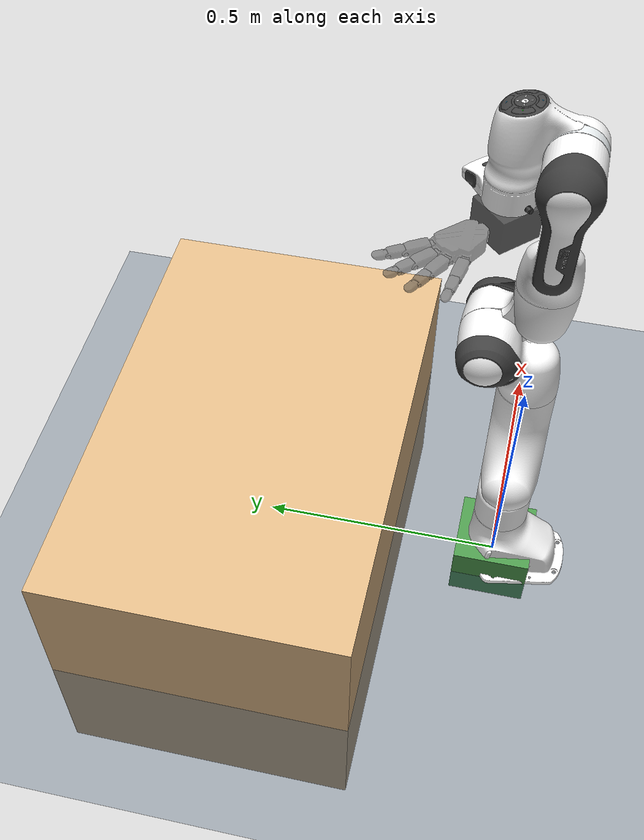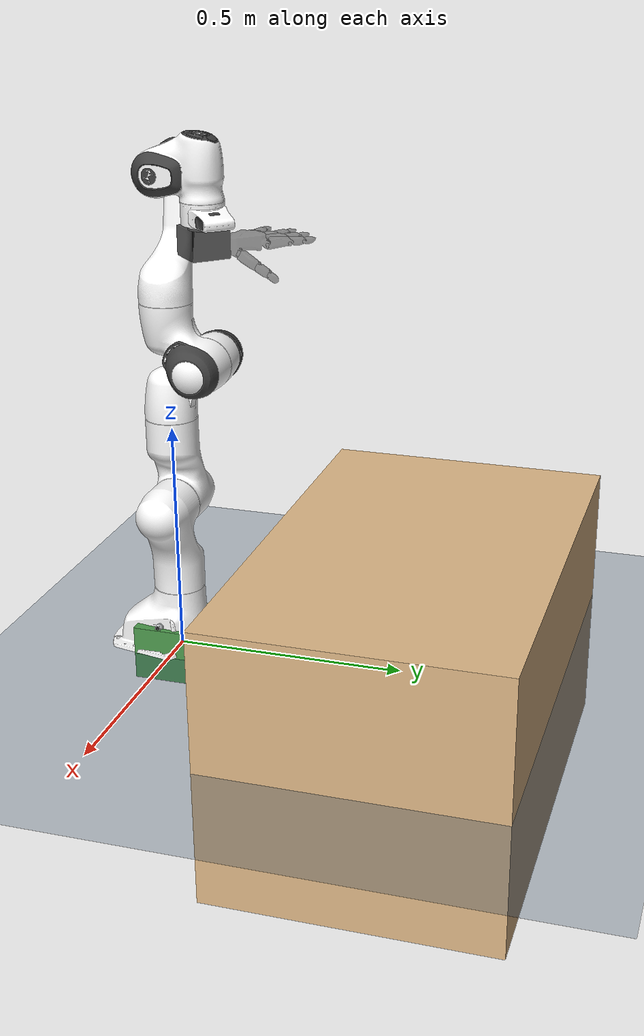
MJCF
<mujoco model="Arena">
  <include file="./panda_dphand.xml"/>

  <option timestep=".002"/>

  <statistic center="0.3 0 0.4" extent=".8"/>

  <visual>
    <headlight diffuse=".4 .4 .4" ambient=".5 .5 .5"/>
    <global azimuth="160" elevation="-20" offheight="128" offwidth="128"/>
    <quality offsamples="8"/>
  </visual>

  <asset>
    <texture type="skybox" builtin="gradient" rgb1=".3 .5 .7" rgb2="0 0 0" width="32" height="512"/>
    <texture name="grid" type="2d" builtin="checker" width="512" height="512" rgb1=".1 .2 .3" rgb2=".2 .3 .4"/>
    <material name="grid" texture="grid" texrepeat="2 2" texuniform="true" reflectance="0"/>
  </asset>

  <worldbody>
    <camera name="input" pos="0.167 1.181 0.830" xyaxes="-1.000 0.003 0.000 -0.002 -0.553 0.833"/>
    <camera name="front" pos="0.150 0.717 0.140" xyaxes="-1.000 0.007 -0.000 -0.000 -0.072 0.997"/>
    <light pos="0 0.5 4" dir="0 0 -1" diffuse=".6 .6 .6" specular=".6 .6 .6"/>
    <geom name="floor" pos="0 0 0" size="30 30 0.01" type="plane" material="grid"/>
    <geom name="desk" pos="0 .53 0" type="box" size=".5 .31 .3" rgba=".87 .72 .53 1" friction="1.0 1.0 1.0"/>

    <body name="object">
      <freejoint name="object"/>
      <geom name="object" type="box" size=".035 .035 .035" mass="0.2" rgba=".6 .3 .6 1" friction="1.0 0.3 0.5"/>
    </body>

    <body name="target">
      <freejoint name="target"/>
      <geom name="target" type="box" size=".08 .08 .06" mass="10.0" rgba=".3 .6 .3 1" friction="1.0 1.0 1.0"/>
      <geom name="visual_target" pos="0 0 0.06" type="sphere" size=".01" rgba="1 0 0 1" contype="0"/>
    </body>

    <!-- 目标位置可视化 - 必须在worldbody的直接子元素 -->
    <body name="world_frame" mocap="true" pos="0.7 0.5 0.2" euler="0 0 0">
      <site group="3" type="sphere" pos="0 0 0" size=".01" rgba=".6 .3 .6 .5"/>
      <site group="3" name="x_axis" type="cylinder" pos="0.1 0 0" euler="0 1.5707963267948966 0" size=".005 .1" rgba=".8 .3 .3 1"/>
      <site group="3" name="y_axis" type="cylinder" pos="0 0.1 0" euler="1.5707963267948966 0 0" size=".005 .1" rgba=".3 .8 .3 1"/>
      <site group="3" name="z_axis" type="cylinder" pos="0 0 0.1" euler="0 0 0" size=".005 .1" rgba=".3 .3 .8 1"/>
    </body>

    <body name="teleop" mocap="true" pos="0.0 0.5 0.4" euler="0 0 0">
      <site group="3" type="sphere" pos="0 0 0" size=".01" rgba=".6 .3 .6 .5"/>
      <site group="3" name="vr_z" type="cylinder" pos="0 0 0.05" euler="0 0 0" size=".005 .05" rgba=".3 .3 .8 .3"/>
      <site group="3" name="vr_x" type="cylinder" pos="0.05 0 0" euler="0 1.5707963267948966 0" size=".005 .05" rgba=".8 .3 .3 .3"/>
      <site group="3" name="vr_y" type="cylinder" pos="0 0.05 0" euler="1.5707963267948966 0 0" size=".005 .05" rgba=".3 .8 .3 .3"/>
      <site group="3" name="vr" type="box" size=".028 .028 .028" rgba=".6 .3 .3 0.3"/>
      <site group="3" name="teleop" type="box" size=".028 .028 .028" rgba=".6 .3 .3 0.3"/>
    </body>

    <body name="pinch" mocap="true" pos="0.5 0.0 0.6" euler="0 0 0">
      <site group="3" type="sphere" pos="0 0 0" size=".01" rgba=".6 .3 .6 .5"/>
      <site group="3" name="z-axis" type="cylinder" pos="0 0 0.05" euler="0 0 0" size=".005 .05" rgba=".3 .3 .8 1"/>
      <site group="3" name="x-axis" type="cylinder" pos="0.05 0 0" euler="0 1.5707963267948966 0" size=".005 .05" rgba=".8 .3 .3 1"/>
      <site group="3" name="y-axis" type="cylinder" pos="0 0.05 0" euler="1.5707963267948966 0 0" size=".005 .05" rgba=".3 .8 .3 1"/>
    </body>

  </worldbody>

  <sensor>
    <framepos name="object_pos" objtype="geom" objname="object"/>
    <framequat name="object_quat" objtype="geom" objname="object"/>
    <framepos name="target_pos" objtype="geom" objname="visual_target"/>
    <framequat name="target_quat" objtype="geom" objname="visual_target"/>
  </sensor>

  <keyframe>
    <key name="init_state"
    qpos="  0 -0.785398163 0 -2.35619449 0 1.57079633 0.785398163
            0 0 0 0 0 0 0
            0 0 0 0 0 0 0
            0 0 0 0 0 0 0
            0
            -.15 .4 0.312 1 0 0 0
             .15 .4 0.36 1 0 0 0"

    ctrl="  0 0 0 0 0 0 0
            0 0 0 0 0 0 0
            0 0 0 0 0 0 0
            0 0 0 0 0 0 0 0"
    />
  </keyframe>
</mujoco>

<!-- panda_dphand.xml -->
<mujoco model="panda">

  <compiler angle="radian" autolimits="true"/>
  <option cone="elliptic" gravity="0 0 -9.81" impratio="10" timestep="0.002"/>

  <default>
    <default class="panda">
      <joint armature="0.1" damping="1" axis="0 0 1" range="-2.8973 2.8973"/>
      <default class="panda/visual">
        <geom type="mesh" contype="0" conaffinity="0" group="2"/>
      </default>
      <default class="panda/collision">
        <geom type="mesh" group="3"/>
      </default>
      <site size="0.001" rgba="0.5 0.5 0.5 0.3" group="4"/>
    </default>

    <!-- 灵巧手 -->
    <default class="plastic">
        <geom solimp="0.5 0.99 0.0001" solref="0.005 1" type="mesh" material="black"/>
    </default>
    <default class="jointconfig">
        <joint axis="1 0 0" damping="0.02" armature="0.0002" frictionloss="0.05"/>
    </default>

    <default class="DIPCtrl">
      <joint  range="0 1.22173"/>
      <position kp="1.0" dampratio="0.9" ctrlrange="0 1.22173" forcerange="-0.66818 0.66818"/>
    </default>

    <default class="PIPCtrl">
      <joint  range="0 1.919862"/>
      <position kp="1.0" dampratio="0.9" ctrlrange="0 1.919862" forcerange="-2.063 2.063"/>
    </default>

    <default class="MCPCtrl">
      <joint  range="-0.523599 1.570796"/>
      <position kp="1.2" dampratio="0.9" ctrlrange="-0.523599 1.570796" forcerange="-4.83 4.83"/>
    </default>

    <default class="MCP2Ctrl">
      <joint  range="-0.610865 0.610865"/>
      <position kp="1.0" dampratio="0.9" ctrlrange="-0.610865 0.610865" forcerange="-2.45 2.45"/>
    </default>

  </default>

  <asset>
    <material name="white" rgba="1 1 1 1"/>
    <material name="off_white" rgba="0.901961 0.921569 0.929412 1"/>
    <material name="dark_grey" rgba="0.25 0.25 0.25 1"/>
    <material name="green" rgba="0 1 0 1"/>
    <material name="light_blue" rgba="0.039216 0.541176 0.780392 1"/>
    <material name="metal" rgba="0.58 0.58 0.58 1"/>
    <material name="silicone" rgba="0.1882 0.1882 0.1882 1"/>

    <mesh name="link0_c" file="franka_emika_panda/assets/link0.stl"/>
    <mesh name="link1_c" file="franka_emika_panda/assets/link1.stl"/>
    <mesh name="link2_c" file="franka_emika_panda/assets/link2.stl"/>
    <mesh name="link3_c" file="franka_emika_panda/assets/link3.stl"/>
    <mesh name="link4_c" file="franka_emika_panda/assets/link4.stl"/>
    <mesh name="link5_c0" file="franka_emika_panda/assets/link5_collision_0.obj"/>
    <mesh name="link5_c1" file="franka_emika_panda/assets/link5_collision_1.obj"/>
    <mesh name="link5_c2" file="franka_emika_panda/assets/link5_collision_2.obj"/>
    <mesh name="link6_c" file="franka_emika_panda/assets/link6.stl"/>
    <mesh name="link7_c" file="franka_emika_panda/assets/link7.stl"/>
    <mesh file="franka_emika_panda/assets/link0_0.obj"/>
    <mesh file="franka_emika_panda/assets/link0_1.obj"/>
    <mesh file="franka_emika_panda/assets/link0_2.obj"/>
    <mesh file="franka_emika_panda/assets/link0_3.obj"/>
    <mesh file="franka_emika_panda/assets/link0_4.obj"/>
    <mesh file="franka_emika_panda/assets/link0_5.obj"/>
    <mesh file="franka_emika_panda/assets/link0_7.obj"/>
    <mesh file="franka_emika_panda/assets/link0_8.obj"/>
    <mesh file="franka_emika_panda/assets/link0_9.obj"/>
    <mesh file="franka_emika_panda/assets/link0_10.obj"/>
    <mesh file="franka_emika_panda/assets/link0_11.obj"/>
    <mesh file="franka_emika_panda/assets/link1.obj"/>
    <mesh file="franka_emika_panda/assets/link2.obj"/>
    <mesh file="franka_emika_panda/assets/link3_0.obj"/>
    <mesh file="franka_emika_panda/assets/link3_1.obj"/>
    <mesh file="franka_emika_panda/assets/link3_2.obj"/>
    <mesh file="franka_emika_panda/assets/link3_3.obj"/>
    <mesh file="franka_emika_panda/assets/link4_0.obj"/>
    <mesh file="franka_emika_panda/assets/link4_1.obj"/>
    <mesh file="franka_emika_panda/assets/link4_2.obj"/>
    <mesh file="franka_emika_panda/assets/link4_3.obj"/>
    <mesh file="franka_emika_panda/assets/link5_0.obj"/>
    <mesh file="franka_emika_panda/assets/link5_1.obj"/>
    <mesh file="franka_emika_panda/assets/link5_2.obj"/>
    <mesh file="franka_emika_panda/assets/link6_0.obj"/>
    <mesh file="franka_emika_panda/assets/link6_1.obj"/>
    <mesh file="franka_emika_panda/assets/link6_2.obj"/>
    <mesh file="franka_emika_panda/assets/link6_3.obj"/>
    <mesh file="franka_emika_panda/assets/link6_4.obj"/>
    <mesh file="franka_emika_panda/assets/link6_5.obj"/>
    <mesh file="franka_emika_panda/assets/link6_6.obj"/>
    <mesh file="franka_emika_panda/assets/link6_7.obj"/>
    <mesh file="franka_emika_panda/assets/link6_8.obj"/>
    <mesh file="franka_emika_panda/assets/link6_9.obj"/>
    <mesh file="franka_emika_panda/assets/link6_10.obj"/>
    <mesh file="franka_emika_panda/assets/link6_11.obj"/>
    <mesh file="franka_emika_panda/assets/link6_12.obj"/>
    <mesh file="franka_emika_panda/assets/link6_13.obj"/>
    <mesh file="franka_emika_panda/assets/link6_14.obj"/>
    <mesh file="franka_emika_panda/assets/link6_15.obj"/>
    <mesh file="franka_emika_panda/assets/link6_16.obj"/>
    <mesh file="franka_emika_panda/assets/link7_0.obj"/>
    <mesh file="franka_emika_panda/assets/link7_1.obj"/>
    <mesh file="franka_emika_panda/assets/link7_2.obj"/>
    <mesh file="franka_emika_panda/assets/link7_3.obj"/>
    <mesh file="franka_emika_panda/assets/link7_4.obj"/>
    <mesh file="franka_emika_panda/assets/link7_5.obj"/>
    <mesh file="franka_emika_panda/assets/link7_6.obj"/>
    <mesh file="franka_emika_panda/assets/link7_7.obj"/>
    <!-- 灵巧手 -->
    <material name="transparent_black" specular="0.5" shininess="0.25" rgba="0.2 0.2 0.2 0.5"  />
    <material name="black" specular="0.5" shininess="0.25" rgba="0.2 0.2 0.2 0.5"  />
    <material name="gray" specular="0.0" shininess="0.5" rgba="0.80848 0.80848 0.80848 1"/>

    <mesh name="Wrist" file="dphand/meshes_obj/Wrist.obj" scale="0.001 0.001 0.001" />
    <mesh name="Palm" file="dphand/meshes_obj/Palm.obj" scale="0.001 0.001 0.001" />
    <mesh name="Thumb-MCP" file="dphand/meshes_obj/MCP.obj" scale="0.001 0.001 0.001" />
    <mesh name="Thumb-PP" file="dphand/meshes_obj/PP.obj" scale="0.001 0.001 0.001" />
    <mesh name="Thumb-PM" file="dphand/meshes_obj/PM.obj" scale="0.001 0.001 0.001" />
    <mesh name="Thumb-PD" file="dphand/meshes_obj/PD.obj" scale="0.001 0.001 0.001" />
    <mesh name="Index-PP" file="dphand/meshes_obj/PP.obj" scale="0.001 0.001 0.001" />
    <mesh name="Index-PM" file="dphand/meshes_obj/PM.obj" scale="0.001 0.001 0.001" />
    <mesh name="Index-PD" file="dphand/meshes_obj/PD.obj" scale="0.001 0.001 0.001" />
    <mesh name="Middle-PD" file="dphand/meshes_obj/PD.obj" scale="0.001 0.001 0.001" />
    <mesh name="Middle-PM" file="dphand/meshes_obj/PM.obj" scale="0.001 0.001 0.001" />
    <mesh name="Middle-PP" file="dphand/meshes_obj/PP.obj" scale="0.001 0.001 0.001" />
    <mesh name="Middle-MCP" file="dphand/meshes_obj/MCP.obj" scale="0.001 0.001 0.001" />
    <mesh name="Ring-MCP" file="dphand/meshes_obj/MCP.obj" scale="0.001 0.001 0.001" />
    <mesh name="Ring-PP" file="dphand/meshes_obj/PP.obj" scale="0.001 0.001 0.001" />
    <mesh name="Ring-PM" file="dphand/meshes_obj/PM.obj" scale="0.001 0.001 0.001" />
    <mesh name="Ring-PD" file="dphand/meshes_obj/PD.obj" scale="0.001 0.001 0.001" />
    <mesh name="Little-PD" file="dphand/meshes_obj/PD.obj" scale="0.001 0.001 0.001" />
    <mesh name="Little-PM" file="dphand/meshes_obj/PM.obj" scale="0.001 0.001 0.001" />
    <mesh name="Little-PP" file="dphand/meshes_obj/PP.obj" scale="0.001 0.001 0.001" />
    <mesh name="Little-MCP" file="dphand/meshes_obj/MCP.obj" scale="0.001 0.001 0.001" />
    <mesh name="Index-MCP" file="dphand/meshes_obj/MCP.obj" scale="0.001 0.001 0.001" />
    <mesh name="Forearm" file="dphand/meshes_obj/Forearm.obj" scale="0.001 0.001 0.001" />

  </asset>

  <worldbody>

    <body name="link0" euler="0 0 1.5708" childclass="panda">

      <inertial mass="0.629769" pos="0 0 0"
        fullinertia="0.00315 0.00388 0.004285 8.2904e-7 0.00015 8.2299e-6"/>
      <geom mesh="link0_0" material="off_white" class="panda/visual"/>
      <geom mesh="link0_1" material="dark_grey" class="panda/visual"/>
      <geom mesh="link0_2" material="off_white" class="panda/visual"/>
      <geom mesh="link0_3" material="dark_grey" class="panda/visual"/>
      <geom mesh="link0_4" material="off_white" class="panda/visual"/>
      <geom mesh="link0_5" material="dark_grey" class="panda/visual"/>
      <geom mesh="link0_7" material="white" class="panda/visual"/>
      <geom mesh="link0_8" material="white" class="panda/visual"/>
      <geom mesh="link0_9" material="dark_grey" class="panda/visual"/>
      <geom mesh="link0_10" material="off_white" class="panda/visual"/>
      <geom mesh="link0_11" material="white" class="panda/visual"/>
      <geom mesh="link0_c" class="panda/collision"/>

      <body name="link1" pos="0 0 0.333">
        <inertial mass="4.970684" pos="0.003875 0.002081 -0.04762"
          fullinertia="0.70337 0.70661 0.0091170 -0.00013900 0.0067720 0.019169"/>
        <joint name="joint1"/>
        <site name="joint1"/>
        <geom material="white" mesh="link1" class="panda/visual"/>
        <geom mesh="link1_c" class="panda/collision"/>

        <body name="link2" quat="1 -1 0 0">
          <inertial mass="0.646926" pos="-0.003141 -0.02872 0.003495"
            fullinertia="0.0079620 2.8110e-2 2.5995e-2 -3.925e-3 1.0254e-2 7.04e-4"/>
          <joint name="joint2" range="-1.7628 1.7628"/>
          <site name="joint2"/>
          <geom material="white" mesh="link2" class="panda/visual"/>
          <geom mesh="link2_c" class="panda/collision"/>

          <body name="link3" pos="0 -0.316 0" quat="1 1 0 0">
            <inertial mass="3.228604" pos="2.7518e-2 3.9252e-2 -6.6502e-2"
              fullinertia="3.7242e-2 3.6155e-2 1.083e-2 -4.761e-3 -1.1396e-2 -1.2805e-2"/>
            <joint name="joint3"/>
            <site name="joint3"/>
            <geom mesh="link3_0" material="white" class="panda/visual"/>
            <geom mesh="link3_1" material="white" class="panda/visual"/>
            <geom mesh="link3_2" material="white" class="panda/visual"/>
            <geom mesh="link3_3" material="dark_grey" class="panda/visual"/>
            <geom mesh="link3_c" class="panda/collision"/>

            <body name="link4" pos="0.0825 0 0" quat="1 1 0 0">
              <inertial mass="3.587895" pos="-5.317e-2 1.04419e-1 2.7454e-2"
                fullinertia="2.5853e-2 1.9552e-2 2.8323e-2 7.796e-3 -1.332e-3 8.641e-3"/>
              <joint name="joint4" range="-3.0718 -0.0698"/>
              <site name="joint4"/>
              <geom mesh="link4_0" material="white" class="panda/visual"/>
              <geom mesh="link4_1" material="white" class="panda/visual"/>
              <geom mesh="link4_2" material="dark_grey" class="panda/visual"/>
              <geom mesh="link4_3" material="white" class="panda/visual"/>
              <geom mesh="link4_c" class="panda/collision"/>

              <body name="link5" pos="-0.0825 0.384 0" quat="1 -1 0 0">
                <inertial mass="1.225946" pos="-1.1953e-2 4.1065e-2 -3.8437e-2"
                  fullinertia="3.5549e-2 2.9474e-2 8.627e-3 -2.117e-3 -4.037e-3 2.29e-4"/>
                <joint name="joint5"/>
                <site name="joint5"/>
                <geom mesh="link5_0" material="dark_grey" class="panda/visual"/>
                <geom mesh="link5_1" material="white" class="panda/visual"/>
                <geom mesh="link5_2" material="white" class="panda/visual"/>
                <geom mesh="link5_c0" class="panda/collision"/>
                <geom mesh="link5_c1" class="panda/collision"/>
                <geom mesh="link5_c2" class="panda/collision"/>

                <body name="link6" quat="1 1 0 0">
                  <inertial mass="1.666555" pos="6.0149e-2 -1.4117e-2 -1.0517e-2"
                    fullinertia="1.964e-3 4.354e-3 5.433e-3 1.09e-4 -1.158e-3 3.41e-4"/>
                  <joint name="joint6" range="-0.0175 3.7525"/>
                  <site name="joint6"/>
                  <geom mesh="link6_0" material="off_white" class="panda/visual"/>
                  <geom mesh="link6_1" material="white" class="panda/visual"/>
                  <geom mesh="link6_2" material="dark_grey" class="panda/visual"/>
                  <geom mesh="link6_3" material="white" class="panda/visual"/>
                  <geom mesh="link6_4" material="white" class="panda/visual"/>
                  <geom mesh="link6_5" material="white" class="panda/visual"/>
                  <geom mesh="link6_6" material="white" class="panda/visual"/>
                  <geom mesh="link6_7" material="light_blue" class="panda/visual"/>
                  <geom mesh="link6_8" material="light_blue" class="panda/visual"/>
                  <geom mesh="link6_9" material="dark_grey" class="panda/visual"/>
                  <geom mesh="link6_10" material="dark_grey" class="panda/visual"/>
                  <geom mesh="link6_11" material="white" class="panda/visual"/>
                  <geom mesh="link6_12" material="green" class="panda/visual"/>
                  <geom mesh="link6_13" material="white" class="panda/visual"/>
                  <geom mesh="link6_14" material="dark_grey" class="panda/visual"/>
                  <geom mesh="link6_15" material="dark_grey" class="panda/visual"/>
                  <geom mesh="link6_16" material="white" class="panda/visual"/>
                  <geom mesh="link6_c" class="panda/collision"/>

                  <body name="link7" pos="0.088 0 0" quat="1 1 0 0">
                    <inertial mass="7.35522e-01" pos="1.0517e-2 -4.252e-3 6.1597e-2"
                      fullinertia="1.2516e-2 1.0027e-2 4.815e-3 -4.28e-4 -1.196e-3 -7.41e-4"/>
                    <joint name="joint7"/>
                    <site name="joint7"/>
                    <geom mesh="link7_0" material="white" class="panda/visual"/>
                    <geom mesh="link7_1" material="dark_grey" class="panda/visual"/>
                    <geom mesh="link7_2" material="dark_grey" class="panda/visual"/>
                    <geom mesh="link7_3" material="dark_grey" class="panda/visual"/>
                    <geom mesh="link7_4" material="dark_grey" class="panda/visual"/>
                    <geom mesh="link7_5" material="dark_grey" class="panda/visual"/>
                    <geom mesh="link7_6" material="dark_grey" class="panda/visual"/>
                    <geom mesh="link7_7" material="white" class="panda/visual"/>
                    <geom mesh="link7_c" class="panda/collision"/>

                      <!-- 灵巧手 -->

                      <body name="attachment" pos="0 0 0" quat="0.3826834 0 0 0.9238795">
                        <site name="pinch" pos="0 0 0.147" euler="0 3.14159 -1.5708"/>

                        <geom type="box" size="0.01 0.01 0.01" rgba="1.0 0.0 0.0 0.5"/>

                        <body name="Forearm" euler="3.14159 0 1.5708" pos="0.107 0 0.147">
                            <geom class="plastic" name="Forearm_geom" type="mesh" mesh="Forearm" pos="0 0 0" euler="0 0 0" material="transparent_black" group="4"/>
                            <inertial mass="1.9453304463125118" pos="-2.6615378024531148e-08 0.009019289013986305 0.0032088635623812897" fullinertia="0.009066690743886285 0.002094541290341062 0.00960327727265748 -6.786222020669816e-09 -1.1843581789473546e-09 8.685478979449512e-05" />

                            <body name="Wrist" pos="-5.329070518200751e-17 0.13654999999999984 -1.7763568394002505e-17" euler="-3.141592653589793 7.41212194690677e-32 -3.141592653589793">
                                <joint  class="jointconfig" name="Forearm_Wrist-Flexion" type="hinge" axis="0.9999999999999922 -8.887205207863613e-16 -4.3835946866997966e-16" pos="0.020000023862298447 1.7202427902594974e-07 1.7511521353289145e-07" range="-1.047198 1.047198" damping="2.0 "/>
                                <geom type="box" pos="0 -0.03 -0.015" size="0.04 0.04 0.03" rgba="0.2 0.2 0.2 0.8"/>
                                <geom class="plastic" name="Wrist_geom" type="mesh" mesh="Wrist" pos="0 0 0" euler="0 0 0"/>
                                <inertial mass="0.02656214079320285" pos="-1.69243593868272e-07 0.0016472458767444085 -1.6800554081391377e-06" fullinertia="2.0813142204422996e-06 4.359133919833236e-06 3.936873235039729e-06 -4.4040114384845307e-11 -1.131996854421492e-08 -5.300701354629199e-10" />

                                <body name="Palm" pos="0.01129099357241001 0.07971340504264361 0.043586459565069006" euler="3.141592653589793 -5.645033986231014e-06 -3.141592653589793">
                                    <joint  class="jointconfig" name="Wrist_Wrist-Abduction" type="hinge" axis="5.645033985756887e-06 3.1918911957973315e-16 -0.9999999999840592" pos="0.011290782654479357 -0.06471323301836342 0.033136348187234654" range="-0.872665 0.523599" damping="0.1"/>
                                    <geom class="plastic" name="Palm_geom" type="mesh" mesh="Palm" pos="0 0 0" euler="0 0 0"/>
                                    <inertial mass="0.2602111705177352" pos="0.008366751647868122 -0.02196163963553714 0.050750200275004716" fullinertia="0.00016809656398654498 9.383212552094538e-05 0.0002082113956576322 3.3379116774949452e-06 -8.329607410925668e-07 -6.439751497203951e-06" />

                                    <body name="Thumb-MCP" pos="0.06646453612762752 -0.006132543067662581 0.23216861852976048" euler="0.8433678826770468 -0.7227359898922351 1.0799202183467054">
                                        <joint  class="jointconfig" name="Palm_Thumb-MCP-Flexion" type="hinge" axis="0.9999993741212565 -1.9773373993725585e-08 2.7577507161202774e-07" pos="-0.19100048404368228 0.008500111311707255 -0.05328147048432252" range="-0.523599 1.570796"/>
                                        <geom class="plastic" name="Thumb-MCP_geom" type="mesh" mesh="Thumb-MCP" pos="0 0 0" euler="0 0 0"/>
                                        <inertial mass="0.005036994326199342" pos="-0.20000003939517735 0.00771726400998568 -0.05238245453895492" fullinertia="1.2970868632662727e-07 1.6007173878014266e-07 1.5900576781080497e-07 1.9696295556984942e-13 -5.666079262914197e-13 -1.4577138745808807e-08" />

                                        <body name="Thumb-PP" pos="-0.1999099137026213 -8.975787161681125e-05 -0.09186663199430434" euler="1.5707964398014924 -4.440892098500623e-16 -3.1415926535897927">
                                            <joint  class="jointconfig" name="Thumb-MCP_Thumb-MCP-Abduction" type="hinge" axis="1.2682376226980097e-07 -0.4999997811126733 0.8660249336764163" pos="9.00146861002862e-05 -0.03683519983393464 -0.011620692906578887" range="-0.610865 0.610865"/>
                                            <geom class="plastic" name="Thumb-PP_geom" type="mesh" mesh="Thumb-PP" pos="0 0 0" euler="0 0 0"/>
                                            <inertial mass="0.03708856624254697" pos="9.030301616385424e-05 -0.014531198977560479 -0.005880351460123734" fullinertia="5.753639912619248e-06 2.3941975919820493e-06 5.462290746232934e-06 -1.8478345177537705e-10 -9.173268363720042e-11 -6.425808363890366e-07" />

                                            <body name="Thumb-PM" pos="9.00862973793437e-05 0.0006333688633876378 -8.975695249269222e-05" euler="1.570796326794897 -3.885780586188048e-16 -3.1415926535897922">
                                                <joint  class="jointconfig" name="Thumb-PP_Thumb-PIP-Flexion" type="hinge" axis="0.9999993741212565 -1.9773343240547803e-08 2.757750738047182e-07" pos="0.009000053397670283 0.007500012297346963 -0.007499959122900093" range="0 1.919862" />
                                                <geom class="plastic" name="Thumb-PM_geom" type="mesh" mesh="Thumb-PM" pos="0 0 0" euler="0 0 0" />
                                                <inertial mass="0.020227223379927373" pos="-1.848580694421842e-07 0.005195827579475683 -0.0187189494907972" fullinertia="1.9967071755990337e-06 2.0011051517931557e-06 8.144475144013871e-07 -8.221468741961615e-12 3.2138099137484784e-12 -1.7160624501976697e-07" />

                                                <body name="Thumb-PD" pos="2.0428103653102883e-15 0.006000000000000014 -0.030374007257449022" euler="-0.0 -5.30131494258512e-15 1.6653345369377338e-16">
                                                    <joint  class="jointconfig" name="Thumb-PM_Thumb-DIP-Flexion" type="hinge" axis="0.9999993741212571 -1.9773343351570105e-08 2.7577506855891443e-07" pos="0.007500185506918168 -1.0135717486668694e-08 -0.005999648442277302" range="0 1.22173" />
                                                    <geom class="plastic" name="Thumb-PD_geom" type="mesh" mesh="Thumb-PD" pos="0 0 0" euler="0 0 0" />
                                                    <inertial mass="0.008221233655296712" pos="4.78256383562841e-06 -0.001059520123761583 -0.014235123790328312" fullinertia="5.898243383359009e-07 6.159934754370924e-07 2.2995080143593457e-07 -4.951643830232875e-11 -3.519078467407562e-10 -5.015937733979458e-08" />

                                                </body>
                                            </body>
                                        </body>
                                    </body>

                                    <body name="Index-MCP" pos="-0.17611858726643287 0.01860627582114212 0.0520866274849916" euler="1.5707752592412532 -0.2617993878586258 -3.141592653589793">
                                        <joint  class="jointconfig" name="Palm_Index-MCP-Flexion" type="hinge" axis="1.0000001561184753 1.9302374834874957e-12 8.852540064885339e-08" pos="-0.1910001700693438 0.00850017511903284 -0.05328168114121647" range="-0.523599 1.570796" />
                                        <geom class="plastic" name="Index-MCP_geom" type="mesh" mesh="Index-MCP" pos="0 0 0" euler="0 0 0" />
                                        <inertial mass="0.005036994326199342" pos="-0.20000003939517752 0.007717264009985939 -0.052382454538954695" fullinertia="1.297086863268387e-07 1.6007173878164116e-07 1.5900576781229262e-07 1.9696271334408768e-13 -5.666087175359978e-13 -1.4577138745714998e-08" />

                                        <body name="Index-PP" pos="-0.19990991370262104 -8.975787161696003e-05 -0.09186663199430434" euler="1.5707964398014924 -6.468858380816871e-16 -3.141592653589793">
                                            <joint  class="jointconfig" name="Index-MCP_Index-MCP-Abduction" type="hinge" axis="-2.6781389336760775e-07 -0.5000005133392491 0.8660250383253366" pos="8.999934378633653e-05 -0.03683495104841343 -0.011620898985207259" range="-0.610865 0.610865"  />
                                            <geom class="plastic" name="Index-PP_geom" type="mesh" mesh="Index-PP" pos="0 0 0" euler="0 0 0"/>
                                            <inertial mass="0.03708856624254697" pos="9.030301616390303e-05 -0.014531198977560611 -0.005880351460123762" fullinertia="5.753639912618303e-06 2.3941975919821154e-06 5.4622907462326845e-06 -1.8478345217030616e-10 -9.17326836966934e-11 -6.425808363889253e-07" />

                                            <body name="Index-PM" pos="9.008629737936147e-05 0.0006333688633875312 -8.97569524926678e-05" euler="1.5707963267948966 1.1102230246251568e-16 -3.1415926535897927">
                                                <joint  class="jointconfig" name="Index-PP_Index-PIP-Flexion" type="hinge" axis="1.0000001561184766 1.9402182929335594e-12 8.852540045456436e-08" pos="0.009000288994289127 0.007500156170805646 -0.007499409252653209" range="0 1.919862"  />
                                                <geom class="plastic" name="Index-PM_geom" type="mesh" mesh="Index-PM" pos="0 0 0" euler="0 0 0" />
                                                <inertial mass="0.020227223379927373" pos="-1.848580693832036e-07 0.005195827579475731 -0.01871894949079733" fullinertia="1.9967071755979597e-06 2.0011051517931565e-06 8.144475144015177e-07 -8.221468830239125e-12 3.2138093862587105e-12 -1.716062450195863e-07" />

                                                <body name="Index-PD" pos="1.838529328779259e-15 0.005999999999999879 -0.030374007257448526" euler="4.1619810896287264e-17 -5.8009153036664374e-15 5.659365933784879e-17">
                                                    <joint  class="jointconfig" name="Index-PM_Index-DIP-Flexion" type="hinge" axis="1.000000156118477 1.9401617001212545e-12 8.852539465364906e-08" pos="0.007500340150546129 -4.768566481272736e-07 -0.005999444697657891" range="0 1.22173"  />
                                                    <geom class="plastic" name="Index-PD_geom" type="mesh" mesh="Index-PD" pos="0 0 0" euler="0 0 0" />
                                                    <inertial mass="0.008221233655296712" pos="4.782563835702136e-06 -0.0010595201237615741 -0.014235123790328466" fullinertia="5.898243383354302e-07 6.159934754366981e-07 2.2995080143603772e-07 -4.951643833947085e-11 -3.519078468321299e-10 -5.0159377339789395e-08" />
                                                </body>
                                            </body>
                                        </body>
                                    </body>

                                    <body name="Middle-MCP" pos="-0.18870930045441625 -0.029730502816816086 0.052085394207460056" euler="1.5707963284469457 -1.915701280528547e-18 -3.141587008555807">
                                        <joint  class="jointconfig" name="Palm_Middle-MCP-Flexion" type="hinge" axis="0.9999999999999927 -5.144259135054388e-16 1.0216509586550925e-14" pos="-0.190999976137697 0.00850017511521407 -0.053282269784410745" range="-0.523599 1.570796" />
                                        <geom class="plastic" name="Middle-MCP_geom" type="mesh" mesh="Middle-MCP" pos="0 0 0" euler="0 0 0"/>
                                        <inertial mass="0.005036994326199342" pos="-0.20000003939517802 0.00771726400998593 -0.052382454538954855" fullinertia="1.2970868632693096e-07 1.6007173878119713e-07 1.590057678117707e-07 1.9696273647388832e-13 -5.66608568171624e-13 -1.4577138745737425e-08" />

                                        <body name="Middle-PP" pos="-0.1999099137026208 -8.97578716168801e-05 -0.09186663199430463" euler="1.5707964398014933 -1.6303776237407785e-15 3.141592653589792">
                                            <joint  class="jointconfig" name="Middle-MCP_Middle-MCP-Abduction" type="hinge" axis="2.108308406328883e-15 -0.5000000964358128 0.8660249443227128" pos="9.006243507892484e-05 -0.03683436090165744 -0.011620937152247808"  range="-0.610865 0.610865"   />
                                            <geom class="plastic" name="Middle-PP_geom" type="mesh" mesh="Middle-PP" pos="0 0 0" euler="0 0 0" />
                                            <inertial mass="0.03708856624254697" pos="9.030301616385639e-05 -0.014531198977560526 -0.005880351460123758" fullinertia="5.753639912620901e-06 2.3941975919821687e-06 5.4622907462329505e-06 -1.8478345192100178e-10 -9.173268371915364e-11 -6.425808363889447e-07" />

                                            <body name="Middle-PM" pos="9.008629737941476e-05 0.0006333688633878154 -8.975695249266335e-05" euler="1.570796326794896 3.5060138694304263e-15 3.141592653589793">
                                                <joint  class="jointconfig" name="Middle-PP_Middle-PIP-Flexion" type="hinge" axis="0.9999999999999915 1.2523998844324682e-15 8.290647917111368e-15" pos="0.009000023862300784 0.007500175192364041 -0.00750026978608391" range="0 1.919862"   />
                                                <geom class="plastic" name="Middle-PM_geom" type="mesh" mesh="Middle-PM" pos="0 0 0" euler="0 0 0" />
                                                <inertial mass="0.020227223379927373" pos="-1.848580693926345e-07 0.005195827579475707 -0.018718949490797342" fullinertia="1.9967071755999316e-06 2.001105151793533e-06 8.14447514401632e-07 -8.221468839957543e-12 3.2138097021157473e-12 -1.716062450195371e-07" />

                                                <body name="Middle-PD" pos="1.936228954946273e-15 0.00599999999999997 -0.03037400725744824" euler="-1.5265541442305315e-16 -5.723529200691246e-15 2.7755575612648e-17">
                                                    <joint  class="jointconfig" name="Middle-PM_Middle-DIP-Flexion" type="hinge" axis="0.9999999999999903 1.224644308819821e-15 2.567118716420166e-15" pos="0.007500023862299049 1.719771129834434e-07 -0.0060002623616039015" range="0 1.22173"   />
                                                    <geom class="plastic" name="Middle-PD_geom" type="mesh" mesh="Middle-PD" pos="0 0 0" euler="0 0 0" />
                                                    <inertial mass="0.008221233655296712" pos="4.782563835693732e-06 -0.0010595201237615774 -0.014235123790328407" fullinertia="5.8982433833592e-07 6.159934754369468e-07 2.2995080143610427e-07 -4.9516438339518763e-11 -3.5190784665454645e-10 -5.0159377339798586e-08" />
                                                </body>
                                            </body>
                                        </body>
                                    </body>
                                    <body name="Ring-MCP" pos="-0.18767024819266495 -0.08492170036827837 0.05208423804242273" euler="1.57081739434854 0.26179938785860357 -3.141592653589793">
                                        <joint  class="jointconfig" name="Palm_Ring-MCP-Flexion" type="hinge" axis="1.0000001561184764 1.93040574150027e-12 -8.852537683456951e-08" pos="-0.19100035948522942 0.008500175102491786 -0.05328127297908482" range="-0.523599 1.570796" />
                                        <geom class="plastic" name="Ring-MCP_geom" type="mesh" mesh="Ring-MCP" pos="0 0 0" euler="0 0 0"/>
                                        <inertial mass="0.005036994326199342" pos="-0.2000000393951779 0.007717264009985978 -0.05238245453895469" fullinertia="1.297086863270078e-07 1.6007173878149897e-07 1.590057678118756e-07 1.9696270663761313e-13 -5.666087329612618e-13 -1.4577138745797626e-08" />

                                        <body name="Ring-PP" pos="-0.19990991370262098 -8.975787161693339e-05 -0.09186663199430477" euler="1.5707964398014922 -1.4657405402796817e-15 3.141592653589792">
                                            <joint  class="jointconfig" name="Ring-MCP_Ring-MCP-Abduction" type="hinge" axis="-3.563392845240543e-07 -0.49999983875427456 0.8660248490652869" pos="9.012715254536063e-05 -0.03683507092069301 -0.011620975312479305"  range="-0.610865 0.610865"  />
                                            <geom class="plastic" name="Ring-PP_geom" type="mesh" mesh="Ring-PP" pos="0 0 0" euler="0 0 0" />
                                            <inertial mass="0.03708856624254697" pos="9.030301616386573e-05 -0.0145311989775605 -0.0058803514601237505" fullinertia="5.7536399126189585e-06 2.394197591982186e-06 5.4622907462321746e-06 -1.8478345194986583e-10 -9.173268371364452e-11 -6.425808363889471e-07" />

                                            <body name="Ring-PM" pos="9.008629737945029e-05 0.0006333688633875312 -8.975695249266335e-05" euler="1.5707963267948961 2.9420910152566558e-15 3.141592653589793">
                                                <joint  class="jointconfig" name="Ring-PP_Ring-PIP-Flexion" type="hinge" axis="1.0000001561184748 1.9219578033436878e-12 -8.852537849990405e-08" pos="0.00899988855791442 0.007500194077943506 -0.007500269456869411"  range="0 1.919862"  />
                                                <geom class="plastic" name="Ring-PM_geom" type="mesh" mesh="Ring-PM" pos="0 0 0" euler="0 0 0" />
                                                <inertial mass="0.020227223379927373" pos="-1.848580693918772e-07 0.0051958275794757175 -0.018718949490797335" fullinertia="1.9967071755994534e-06 2.0011051517932522e-06 8.144475144016588e-07 -8.221468843985106e-12 3.2138096393098035e-12 -1.716062450195736e-07" />

                                                <body name="Ring-PD" pos="2.113864638886298e-15 0.005999999999999881 -0.030374007257448384" euler="-1.6658427567060916e-16 -5.828670879282087e-15 -1.1912163150416135e-16">
                                                    <joint  class="jointconfig" name="Ring-PM_Ring-DIP-Flexion" type="hinge" axis="1.0000001561184741 1.922076924128159e-12 -8.852538432857493e-08" pos="0.0074997407780687895 -1.7943064091345823e-07 -0.005999871204416982"  range="0 1.22173"   />
                                                    <geom class="plastic" name="Ring-PD_geom" type="mesh" mesh="Ring-PD" pos="0 0 0" euler="0 0 0" />
                                                    <inertial mass="0.008221233655296712" pos="4.782563835709075e-06 -0.0010595201237615654 -0.014235123790328317" fullinertia="5.898243383363355e-07 6.159934754374612e-07 2.299508014361174e-07 -4.951643834537826e-11 -3.5190784669062244e-10 -5.015937733981168e-08" />

                                                </body>
                                            </body>
                                        </body>
                                    </body>
                                    <body name="Little-MCP" pos="-0.15875085210786632 -0.16055826110610188 0.05208503902128425" euler="1.5708043887389316 0.610865238220759 3.1415926535897927">
                                        <joint  class="jointconfig" name="Palm_Little-MCP-Flexion" type="hinge" axis="0.9999997134398921 3.2678340827589636e-12 -3.320347174984306e-07" pos="-0.1909997506940443 0.008500175115955124 -0.05328193162573373" range="-0.523599 1.570796" />
                                        <geom class="plastic" name="Little-MCP_geom" type="mesh" mesh="Little-MCP" pos="0 0 0" euler="0 0 0"/>
                                        <inertial mass="0.005036994326199342" pos="-0.20000003939517627 0.007717264009985934 -0.052382454538954584" fullinertia="1.2970868632661083e-07 1.6007173878179342e-07 1.5900576781231374e-07 1.9696272214941319e-13 -5.666084463200185e-13 -1.4577138745881507e-08" />

                                        <body name="Little-PP" pos="-0.1999099137026218 -8.975787161693339e-05 -0.09186663199430449" euler="1.5707964398014929 -1.5032014194049508e-15 3.1415926535897922">
                                            <joint  class="jointconfig" name="Little-MCP_Little-MCP-Abduction" type="hinge" axis="-8.52921952787522e-08 -0.500000033298895 0.8660248644462071" pos="9.032653567493665e-05 -0.03683471032494446 -0.011620954373351812"  range="-0.610865 0.610865"  />
                                            <geom class="plastic" name="Little-PP_geom" type="mesh" mesh="Little-PP" pos="0 0 0" euler="0 0 0" />
                                            <inertial mass="0.03708856624254697" pos="9.030301616387224e-05 -0.014531198977560398 -0.005880351460123711" fullinertia="5.7536399126192465e-06 2.3941975919822128e-06 5.462290746232142e-06 -1.8478345201614616e-10 -9.17326837131716e-11 -6.42580836388941e-07" />

                                            <body name="Little-PM" pos="9.008629737948581e-05 0.0006333688633876734 -8.975695249266335e-05" euler="1.5707963267948961 3.108624468950432e-15 3.141592653589793">
                                                <joint  class="jointconfig" name="Little-PP_Little-PIP-Flexion" type="hinge" axis="0.9999997134398901 3.232061225948125e-12 -3.3203471960785436e-07" pos="0.00900005084200259 0.007499634902912834 -0.007499625246447951" range="0 1.919862"   />
                                                <geom class="plastic" name="Little-PM_geom" type="mesh" mesh="Little-PM" pos="0 0 0" euler="0 0 0" />
                                                <inertial mass="0.020227223379927373" pos="-1.8485806939708138e-07 0.005195827579475688 -0.01871894949079721" fullinertia="1.9967071755988914e-06 2.0011051517922976e-06 8.144475144015422e-07 -8.221468839812521e-12 3.2138098415389197e-12 -1.7160624501956656e-07" />

                                                <body name="Little-PD" pos="1.8474111129762605e-15 0.005999999999999897 -0.030374007257449237" euler="4.161981089628736e-17 -5.995204332975853e-15 6.189413741188206e-16">
                                                    <joint  class="jointconfig" name="Little-PM_Little-DIP-Flexion" type="hinge" axis="0.9999997134398901 3.23144228287994e-12 -3.320347256030587e-07" pos="0.007500029952810935 -8.418228709658533e-08 -0.006000154141074002" range="0 1.22173"  />
                                                    <geom class="plastic" name="Little-PD_geom" type="mesh" mesh="Little-PD" pos="0 0 0" euler="0 0 0" />
                                                    <inertial mass="0.008221233655296712" pos="4.78256383570734e-06 -0.001059520123761557 -0.014235123790328267" fullinertia="5.898243383361532e-07 6.159934754376649e-07 2.2995080143613193e-07 -4.951643834013244e-11 -3.519078466670908e-10 -5.015937733978922e-08" />

                                                </body>
                                            </body>
                                        </body>
                                    </body>
                                </body>
                            </body>
                        </body>
                      <!-- 灵巧手 -->
                    </body>
                  </body>
                </body>
              </body>
            </body>
          </body>
        </body>
      </body>
    </body>
  </worldbody>

  <!-- 灵巧手 -->
  <contact>
      <exclude name="Wrist_Forearm-exclude" body1="Wrist" body2="Forearm"/>
      <exclude name="Palm_Forearm-exclude" body1="Palm" body2="Forearm"/>

      <exclude name="Thumb-PP-exclude" body1="Thumb-PP" body2="Palm"/>
      <exclude name="Index-PP-exclude" body1="Index-PP" body2="Palm"/>
      <exclude name="Middle-PP-exclude" body1="Middle-PP" body2="Palm"/>
      <exclude name="Ring-PP-exclude" body1="Ring-PP" body2="Palm"/>
      <exclude name="Little-PP-exclude" body1="Little-PP" body2="Palm"/>
  </contact>
  <!-- 灵巧手 -->

  <actuator>
    <motor class="panda" name="actuator1" joint="joint1" ctrlrange="-87 87"/>
    <motor class="panda" name="actuator2" joint="joint2" ctrlrange="-87 87"/>
    <motor class="panda" name="actuator3" joint="joint3" ctrlrange="-87 87"/>
    <motor class="panda" name="actuator4" joint="joint4" ctrlrange="-87 87"/>
    <motor class="panda" name="actuator5" joint="joint5" ctrlrange="-12 12"/>
    <motor class="panda" name="actuator6" joint="joint6" ctrlrange="-12 12"/>
    <motor class="panda" name="actuator7" joint="joint7" ctrlrange="-12 12"/>

    <!-- 灵巧手 -->

    <position name="Wrist" joint="Forearm_Wrist-Flexion" ctrlrange="-1.047198 1.047198" kp="50" forcerange="-500 500" />
    <position name="Palm" joint="Wrist_Wrist-Abduction" ctrlrange="-0.523598776 0.523598776" kp="50" forcerange="-500 500" />

    <position class="MCPCtrl"  name="Thumb-MCP" joint="Palm_Thumb-MCP-Flexion" kp="1.0" dampratio="0.9" />
    <position class="MCP2Ctrl"  name="Thumb-PP" joint="Thumb-MCP_Thumb-MCP-Abduction" kp="1.0" dampratio="0.9" />
    <position class="PIPCtrl"  name="Thumb-PM" joint="Thumb-PP_Thumb-PIP-Flexion" kp="1.0" dampratio="0.9" />
    <position class="DIPCtrl"  name="Thumb-PD" joint="Thumb-PM_Thumb-DIP-Flexion" kp="1.0" dampratio="0.9" />

    <position class="MCPCtrl"  name="Index-MCP" joint="Palm_Index-MCP-Flexion" />
    <position class="MCP2Ctrl" name="Index-PP" joint="Index-MCP_Index-MCP-Abduction"  />
    <position class="PIPCtrl"  name="Index-PM" joint="Index-PP_Index-PIP-Flexion" />
    <position class="DIPCtrl" name="Index-PD" joint="Index-PM_Index-DIP-Flexion" />

    <position class="MCPCtrl"  name="Middle-MCP" joint="Palm_Middle-MCP-Flexion"  />
    <position class="MCP2Ctrl" name="Middle-PP" joint="Middle-MCP_Middle-MCP-Abduction" />
    <position class="PIPCtrl"  name="Middle-PM" joint="Middle-PP_Middle-PIP-Flexion" />
    <position class="DIPCtrl" name="Middle-PD" joint="Middle-PM_Middle-DIP-Flexion"/>

    <position class="MCPCtrl"  name="Ring-MCP" joint="Palm_Ring-MCP-Flexion"  />
    <position class="MCP2Ctrl"  name="Ring-PP" joint="Ring-MCP_Ring-MCP-Abduction" />
    <position class="PIPCtrl"  name="Ring-PM" joint="Ring-PP_Ring-PIP-Flexion" />
    <position class="DIPCtrl" name="Ring-PD" joint="Ring-PM_Ring-DIP-Flexion" />

    <position class="MCPCtrl"  name="Little-MCP" joint="Palm_Little-MCP-Flexion" />
    <position class="MCP2Ctrl" name="Little-PP" joint="Little-MCP_Little-MCP-Abduction"/>
    <position class="PIPCtrl"  name="Little-PM" joint="Little-PP_Little-PIP-Flexion" />
    <position class="DIPCtrl" name="Little-PD" joint="Little-PM_Little-DIP-Flexion" />

  </actuator>

  <sensor>

    <force name="panda/wrist_force" site="pinch"/>
    <framepos name="tcp_pos" objtype="site" objname="pinch"/>
    <framequat name="tcp_quat" objtype="site" objname="pinch"/>

    <framelinvel name="tcp_linvel" objtype="site" objname="pinch"/>
    <frameangvel name="tcp_angvel" objtype="site" objname="pinch"/>

    <!-- 灵巧手 -->
    <jointpos name="dphand-Forearm_Wrist-Flexion_pos" joint="Forearm_Wrist-Flexion" />
    <jointpos name="dphand-Wrist_Wrist-Abduction_pos" joint="Wrist_Wrist-Abduction" />
    <jointpos name="dphand-Palm_Thumb-MCP-Flexion_pos" joint="Palm_Thumb-MCP-Flexion" />
    <jointpos name="dphand-Thumb-MCP_Thumb-MCP-Abduction_pos" joint="Thumb-MCP_Thumb-MCP-Abduction" />
    <jointpos name="dphand-Thumb-PP_Thumb-PIP-Flexion_pos" joint="Thumb-PP_Thumb-PIP-Flexion" />
    <jointpos name="dphand-Thumb-PM_Thumb-DIP-Flexion_pos" joint="Thumb-PM_Thumb-DIP-Flexion" />
    <jointpos name="dphand-Palm_Index-MCP-Flexion_pos" joint="Palm_Index-MCP-Flexion" />
    <jointpos name="dphand-Index-MCP_Index-MCP-Abduction_pos" joint="Index-MCP_Index-MCP-Abduction" />
    <jointpos name="dphand-Index-PP_Index-PIP-Flexion_pos" joint="Index-PP_Index-PIP-Flexion" />
    <jointpos name="dphand-Index-PM_Index-DIP-Flexion_pos" joint="Index-PM_Index-DIP-Flexion" />
    <jointpos name="dphand-Palm_Middle-MCP-Flexion_pos" joint="Palm_Middle-MCP-Flexion" />
    <jointpos name="dphand-Middle-MCP_Middle-MCP-Abduction_pos" joint="Middle-MCP_Middle-MCP-Abduction" />
    <jointpos name="dphand-Middle-PP_Middle-PIP-Flexion_pos" joint="Middle-PP_Middle-PIP-Flexion" />
    <jointpos name="dphand-Middle-PM_Middle-DIP-Flexion_pos" joint="Middle-PM_Middle-DIP-Flexion" />
    <jointpos name="dphand-Palm_Ring-MCP-Flexion_pos" joint="Palm_Ring-MCP-Flexion" />
    <jointpos name="dphand-Ring-MCP_Ring-MCP-Abduction_pos" joint="Ring-MCP_Ring-MCP-Abduction" />
    <jointpos name="dphand-Ring-PP_Ring-PIP-Flexion_pos" joint="Ring-PP_Ring-PIP-Flexion" />
    <jointpos name="dphand-Ring-PM_Ring-DIP-Flexion_pos" joint="Ring-PM_Ring-DIP-Flexion" />
    <jointpos name="dphand-Palm_Little-MCP-Flexion_pos" joint="Palm_Little-MCP-Flexion" />
    <jointpos name="dphand-Little-MCP_Little-MCP-Abduction_pos" joint="Little-MCP_Little-MCP-Abduction" />
    <jointpos name="dphand-Little-PP_Little-PIP-Flexion_pos" joint="Little-PP_Little-PIP-Flexion" />
    <jointpos name="dphand-Little-PM_Little-DIP-Flexion_pos" joint="Little-PM_Little-DIP-Flexion" />

  </sensor>
</mujoco>
